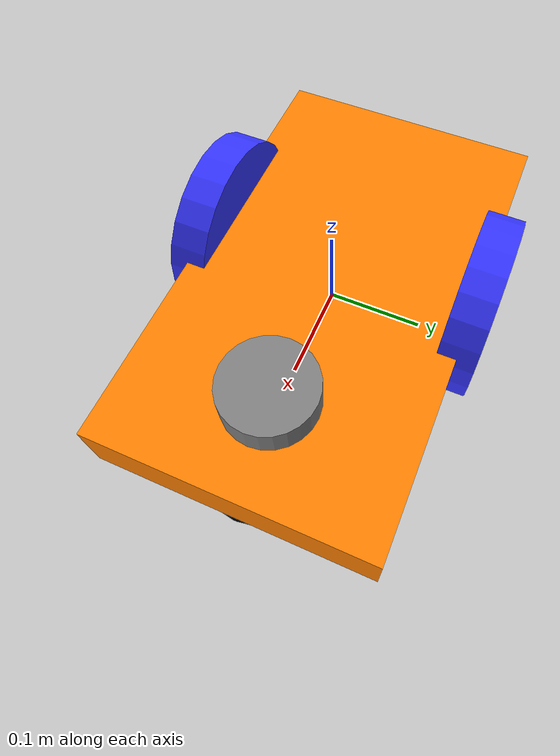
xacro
<?xml version="1.0"?>
<robot name="group30Bot" xmlns:xacro="http://www.ros.org/wiki/xacro">

  <!-- Load supporting xacro files -->
  <xacro:include filename="$(find com760cw2_group30)/urdf/macros.xacro"/>
  <xacro:include filename="$(find com760cw2_group30)/urdf/materials.xacro"/>
  <xacro:include filename="$(find com760cw2_group30)/urdf/group30Bot.gazebo"/>

  <link name="base_link"/>

  <joint name="base_joint" type="fixed">
    <parent link="base_link"/>
    <child link="base_link_chassis"/>
    <origin xyz="0 0 0" rpy="0 0 0"/>
  </joint>

  <!-- Robot Chasis -->
  <!--
    Base link - the main body of the robot
    Box shape: 0.5m long, 0.3m wide, 0.07m tall
    Source: Provided file
  -->
  <link name="base_link_chassis">
    <visual>
      <origin rpy="0 0 0" xyz="0 0 0"/>
      <geometry>
        <box size="0.5 0.3 0.07"/>
      </geometry>
      <material name="orange"/>
    </visual>
    <collision>
      <origin rpy="0 0 0" xyz="0 0 0"/>
      <geometry>
        <box size="0.5 0.3 0.07"/>
      </geometry>
    </collision>
    <!-- Using macro instead of hardcoded numbers, source: macros.xacro -->
    <xacro:box_inertia m="5" w="0.3" h="0.07" d="0.5"/>
  </link>

  <!-- Caster Wheel -->
  <!--
    Passive front caster wheel for stability
    Sphere shape, low friction so it rotates freely in any direction
    Source: Provided file
  -->
  <link name="caster_link">
    <visual>
      <geometry>
        <sphere radius="0.05"/>
      </geometry>
      <material name="black"/>
    </visual>
    <collision>
      <geometry>
        <sphere radius="0.05"/>
      </geometry>
    </collision>
    <xacro:sphere_inertia m="0.1" r="0.05"/>
  </link>

  <joint name="caster_joint" type="fixed">
    <parent link="base_link_chassis"/>
    <child link="caster_link"/>
    <origin xyz="0.2 0 -0.05"/>
  </joint>

  <!-- Right Wheel -->
  <!--
    Continuous joint so can rotate freely (no limits)
    Axis xyz="0 1 0" means it rotates around the Y axis
    Source: Provided file, W6 Lecture
  -->
  <link name="right_wheel">
    <visual>
      <origin rpy="0 1.5707 1.5707" xyz="0 0 0"/>
      <geometry>
        <cylinder length="0.04" radius="0.1"/>
      </geometry>
      <material name="blue"/>
    </visual>
    <collision>
      <origin rpy="0 1.5707 1.5707" xyz="0 0 0"/>
      <geometry>
        <cylinder length="0.04" radius="0.1"/>
      </geometry>
    </collision>
    <xacro:cylinder_inertia m="0.2" r="0.1" h="0.04"/>
  </link>

  <joint name="right_wheel_hinge" type="continuous">
    <origin rpy="0 0 0" xyz="-0.05 0.15 0"/>
    <child link="right_wheel"/>
    <parent link="base_link_chassis"/>
    <axis rpy="0 0 0" xyz="0 1 0"/>
    <limit effort="10000" velocity="1000"/>
    <joint_properties damping="1.0" friction="1.0"/>
  </joint>

  <!-- Left Wheel -->
  <link name="left_wheel">
    <visual>
      <origin rpy="0 1.5707 1.5707" xyz="0 0 0"/>
      <geometry>
        <cylinder length="0.04" radius="0.1"/>
      </geometry>
      <material name="blue"/>
    </visual>
    <collision>
      <origin rpy="0 1.5707 1.5707" xyz="0 0 0"/>
      <geometry>
        <cylinder length="0.04" radius="0.1"/>
      </geometry>
    </collision>
    <xacro:cylinder_inertia m="0.2" r="0.1" h="0.04"/>
  </link>

  <joint name="left_wheel_hinge" type="continuous">
    <origin rpy="0 0 0" xyz="-0.05 -0.15 0"/>
    <child link="left_wheel"/>
    <parent link="base_link_chassis"/>
    <axis rpy="0 0 0" xyz="0 1 0"/>
    <limit effort="10000" velocity="1000"/>
    <joint_properties damping="1.0" friction="1.0"/>
  </joint>

  <!-- Laser Sensor -->
  <link name="laser_sensor">
    <visual>
      <origin xyz="0 0 0" rpy="0 0 0"/>
      <geometry>
        <cylinder length="0.04" radius="0.05"/>
      </geometry>
      <material name="grey"/>
    </visual>
    <collision>
      <origin xyz="0 0 0" rpy="0 0 0"/>
      <geometry>
        <cylinder length="0.04" radius="0.05"/>
      </geometry>
    </collision>
    <xacro:cylinder_inertia m="0.1" r="0.05" h="0.04"/>
  </link>

  <!--
    Fixed joint - laser doesn't move relative to chassis
    Positioned at front centre, slightly above chassis surface
    Source: W8 Lecture -->
  <joint name="laser_joint" type="fixed">
    <parent link="base_link_chassis"/>
    <child link="laser_sensor"/>
    <origin xyz="0.15 0 0.05" rpy="0 0 0"/>
  </joint>

</robot>

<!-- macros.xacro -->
<robot xmlns:xacro="http://www.ros.org/wiki/xacro">

  <!--
    Inertia macros to simplify repeated calculations
    Source: W8 Practical, W6 Lecture
    Inertia formulae from: wiki - List of moments of inertia
  -->

  <!-- Box inertia: used for the robot chassis -->
  <xacro:macro name="box_inertia" params="m w h d">
    <inertial>
      <mass value="${m}"/>
      <inertia
        ixx="${m / 12.0 * (d*d + h*h)}" ixy="0.0" ixz="0.0"
        iyy="${m / 12.0 * (w*w + h*h)}" iyz="0.0"
        izz="${m / 12.0 * (w*w + d*d)}"/>
    </inertial>
  </xacro:macro>

  <!-- Cylinder inertia: used for wheels and laser sensor -->
  <xacro:macro name="cylinder_inertia" params="m r h">
    <inertial>
      <mass value="${m}"/>
      <inertia
        ixx="${m / 12.0 * (3*r*r + h*h)}" ixy="0.0" ixz="0.0"
        iyy="${m / 12.0 * (3*r*r + h*h)}" iyz="0.0"
        izz="${m / 2.0 * r*r}"/>
    </inertial>
  </xacro:macro>

  <!-- Sphere inertia: used for the caster wheel -->
  <xacro:macro name="sphere_inertia" params="m r">
    <inertial>
      <mass value="${m}"/>
      <inertia
        ixx="${2.0 * m * r*r / 5.0}" ixy="0.0" ixz="0.0"
        iyy="${2.0 * m * r*r / 5.0}" iyz="0.0"
        izz="${2.0 * m * r*r / 5.0}"/>
    </inertial>
  </xacro:macro>

</robot>

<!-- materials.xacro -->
<robot xmlns:xacro="http://www.ros.org/wiki/xacro">

  <!--
    Material/colour definitions
    Source: W6 Lecture, W8 Practical
    Centralising colours makes it easy to restyle the robot
  -->

  <material name="black">
    <color rgba="0.0 0.0 0.0 1.0"/>
  </material>

  <material name="blue">
    <color rgba="0.2 0.2 1.0 1.0"/>
  </material>

  <material name="orange">
    <color rgba="1.0 0.5 0.0 1.0"/>
  </material>

  <material name="grey">
    <color rgba="0.5 0.5 0.5 1.0"/>
  </material>

  <material name="white">
    <color rgba="1.0 1.0 1.0 1.0"/>
  </material>

</robot>
